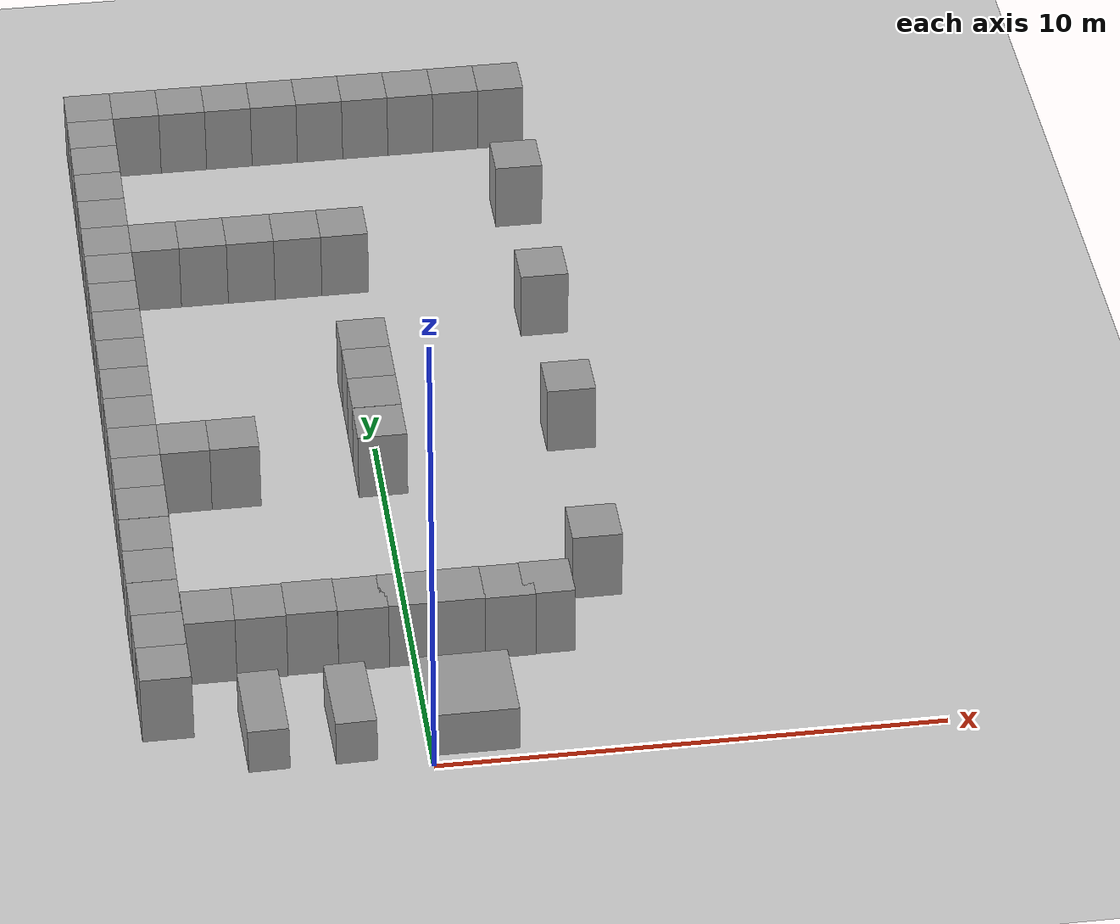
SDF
<sdf version="1.4">
 <world name="default">
  <model name="ground_plane">
   <static>1</static>
   <link name="link">
    <collision name="collision">
     <geometry><plane><normal>0 0 1</normal><size>100 100</size></plane></geometry>
     <surface><friction><ode><mu>100</mu><mu2>50</mu2></ode></friction></surface>
    </collision>
    <visual name="visual">
     <cast_shadows>0</cast_shadows>
     <geometry><plane><normal>0 0 1</normal><size>100 100</size></plane></geometry>
     <material>
      <script><uri>file://media/materials/scripts/gazebo.material</uri><name>Gazebo/Grey</name></script>
     </material>
    </visual>
    <velocity_decay><linear>0</linear><angular>0</angular></velocity_decay>
   </link>
  </model>
  <model name="unit_box_1">
   <pose>-5.01661 4.99523 0.5 0 -0 0.000223</pose>
   <static>1</static>
   <link name="link">
    <inertial>
     <mass>1</mass>
     <inertia><ixx>1</ixx><ixy>0</ixy><ixz>0</ixz><iyy>1</iyy><iyz>0</iyz><izz>1</izz></inertia>
    </inertial>
    <collision name="collision"><geometry><box><size>1 1 2</size></box></geometry></collision>
    <visual name="visual">
     <geometry><box><size>1 1 2</size></box></geometry>
     <material>
      <script><uri>file://media/materials/scripts/gazebo.material</uri><name>Gazebo/Grey</name></script>
     </material>
    </visual>
    <velocity_decay><linear>0</linear><angular>0</angular></velocity_decay>
   </link>
   <static>0</static>
  </model>
  <model name="unit_box_2">
   <pose>-4.00553 3.58042 0.5 0 -0 3e-05</pose>
   <static>1</static>
   <link name="link">
    <inertial>
     <mass>1</mass>
     <inertia><ixx>1</ixx><ixy>0</ixy><ixz>0</ixz><iyy>1</iyy><iyz>0</iyz><izz>1</izz></inertia>
    </inertial>
    <collision name="collision"><geometry><box><size>1 1 2</size></box></geometry></collision>
    <visual name="visual">
     <geometry><box><size>1 1 2</size></box></geometry>
     <material>
      <script><uri>file://media/materials/scripts/gazebo.material</uri><name>Gazebo/Grey</name></script>
     </material>
    </visual>
    <velocity_decay><linear>0</linear><angular>0</angular></velocity_decay>
   </link>
   <static>0</static>
  </model>
  <model name="unit_box_3">
   <pose>-3.01637 3.57596 0.5 0 -0 2.1e-05</pose>
   <static>1</static>
   <link name="link">
    <inertial>
     <mass>1</mass>
     <inertia><ixx>1</ixx><ixy>0</ixy><ixz>0</ixz><iyy>1</iyy><iyz>0</iyz><izz>1</izz></inertia>
    </inertial>
    <collision name="collision"><geometry><box><size>1 1 2</size></box></geometry></collision>
    <visual name="visual">
     <geometry><box><size>1 1 2</size></box></geometry>
     <material>
      <script><uri>file://media/materials/scripts/gazebo.material</uri><name>Gazebo/Grey</name></script>
     </material>
    </visual>
    <velocity_decay><linear>0</linear><angular>0</angular></velocity_decay>
   </link>
   <static>0</static>
  </model>
  <model name="unit_box_4">
   <pose>-2.01664 3.5974 0.5 0 0 -0.000278</pose>
   <static>1</static>
   <link name="link">
    <inertial>
     <mass>1</mass>
     <inertia><ixx>1</ixx><ixy>0</ixy><ixz>0</ixz><iyy>1</iyy><iyz>0</iyz><izz>1</izz></inertia>
    </inertial>
    <collision name="collision"><geometry><box><size>1 1 2</size></box></geometry></collision>
    <visual name="visual">
     <geometry><box><size>1 1 2</size></box></geometry>
     <material>
      <script><uri>file://media/materials/scripts/gazebo.material</uri><name>Gazebo/Grey</name></script>
     </material>
    </visual>
    <velocity_decay><linear>0</linear><angular>0</angular></velocity_decay>
   </link>
   <static>0</static>
  </model>
  <model name="unit_box_5">
   <pose>-1.01668 3.57335 0.5 0 0 -0.000319</pose>
   <static>1</static>
   <link name="link">
    <inertial>
     <mass>1</mass>
     <inertia><ixx>1</ixx><ixy>0</ixy><ixz>0</ixz><iyy>1</iyy><iyz>0</iyz><izz>1</izz></inertia>
    </inertial>
    <collision name="collision"><geometry><box><size>1 1 2</size></box></geometry></collision>
    <visual name="visual">
     <geometry><box><size>1 1 2</size></box></geometry>
     <material>
      <script><uri>file://media/materials/scripts/gazebo.material</uri><name>Gazebo/Grey</name></script>
     </material>
    </visual>
    <velocity_decay><linear>0</linear><angular>0</angular></velocity_decay>
   </link>
   <static>0</static>
  </model>
  <model name="unit_box_6">
   <pose>-0.151354 3.58421 0.5 0 0 -0.000328</pose>
   <static>1</static>
   <link name="link">
    <inertial>
     <mass>1</mass>
     <inertia><ixx>1</ixx><ixy>0</ixy><ixz>0</ixz><iyy>1</iyy><iyz>0</iyz><izz>1</izz></inertia>
    </inertial>
    <collision name="collision"><geometry><box><size>1 1 2</size></box></geometry></collision>
    <visual name="visual">
     <geometry><box><size>1 1 2</size></box></geometry>
     <material>
      <script><uri>file://media/materials/scripts/gazebo.material</uri><name>Gazebo/Grey</name></script>
     </material>
    </visual>
    <velocity_decay><linear>0</linear><angular>0</angular></velocity_decay>
   </link>
   <static>0</static>
  </model>
  <model name="unit_box_7">
   <pose>0.893326 3.59049 0.5 0 0 -0.000753</pose>
   <static>1</static>
   <link name="link">
    <inertial>
     <mass>1</mass>
     <inertia><ixx>1</ixx><ixy>0</ixy><ixz>0</ixz><iyy>1</iyy><iyz>0</iyz><izz>1</izz></inertia>
    </inertial>
    <collision name="collision"><geometry><box><size>1 1 2</size></box></geometry></collision>
    <visual name="visual">
     <geometry><box><size>1 1 2</size></box></geometry>
     <material>
      <script><uri>file://media/materials/scripts/gazebo.material</uri><name>Gazebo/Grey</name></script>
     </material>
    </visual>
    <velocity_decay><linear>0</linear><angular>0</angular></velocity_decay>
   </link>
   <static>0</static>
  </model>
  <model name="unit_box_8">
   <pose>1.87753 3.57629 0.5 0 0 -0.000671</pose>
   <static>1</static>
   <link name="link">
    <inertial>
     <mass>1</mass>
     <inertia><ixx>1</ixx><ixy>0</ixy><ixz>0</ixz><iyy>1</iyy><iyz>0</iyz><izz>1</izz></inertia>
    </inertial>
    <collision name="collision"><geometry><box><size>1 1 2</size></box></geometry></collision>
    <visual name="visual">
     <geometry><box><size>1 1 2</size></box></geometry>
     <material>
      <script><uri>file://media/materials/scripts/gazebo.material</uri><name>Gazebo/Grey</name></script>
     </material>
    </visual>
    <velocity_decay><linear>0</linear><angular>0</angular></velocity_decay>
   </link>
   <static>0</static>
  </model>
  <model name="unit_box_40">
   <pose>-5.01481 3.99235 0.5 0 -0 0.003225</pose>
   <static>1</static>
   <link name="link">
    <inertial>
     <mass>1</mass>
     <inertia><ixx>1</ixx><ixy>0</ixy><ixz>0</ixz><iyy>1</iyy><iyz>0</iyz><izz>1</izz></inertia>
    </inertial>
    <collision name="collision"><geometry><box><size>1 1 2</size></box></geometry></collision>
    <visual name="visual">
     <geometry><box><size>1 1 2</size></box></geometry>
     <material>
      <script><uri>file://media/materials/scripts/gazebo.material</uri><name>Gazebo/Grey</name></script>
     </material>
    </visual>
    <velocity_decay><linear>0</linear><angular>0</angular></velocity_decay>
   </link>
   <static>0</static>
  </model>
  <model name="unit_box_41">
   <pose>-5.00826 2.99203 0.5 0 -0 0.002598</pose>
   <static>1</static>
   <link name="link">
    <inertial>
     <mass>1</mass>
     <inertia><ixx>1</ixx><ixy>0</ixy><ixz>0</ixz><iyy>1</iyy><iyz>0</iyz><izz>1</izz></inertia>
    </inertial>
    <collision name="collision"><geometry><box><size>1 1 2</size></box></geometry></collision>
    <visual name="visual">
     <geometry><box><size>1 1 2</size></box></geometry>
     <material>
      <script><uri>file://media/materials/scripts/gazebo.material</uri><name>Gazebo/Grey</name></script>
     </material>
    </visual>
    <velocity_decay><linear>0</linear><angular>0</angular></velocity_decay>
   </link>
   <static>0</static>
  </model>
  <model name="unit_box_42">
   <pose>-5.0021 1.99164 0.5 0 -0 0.001796</pose>
   <static>1</static>
   <link name="link">
    <inertial>
     <mass>1</mass>
     <inertia><ixx>1</ixx><ixy>0</ixy><ixz>0</ixz><iyy>1</iyy><iyz>0</iyz><izz>1</izz></inertia>
    </inertial>
    <collision name="collision"><geometry><box><size>1 1 2</size></box></geometry></collision>
    <visual name="visual">
     <geometry><box><size>1 1 2</size></box></geometry>
     <material>
      <script><uri>file://media/materials/scripts/gazebo.material</uri><name>Gazebo/Grey</name></script>
     </material>
    </visual>
    <velocity_decay><linear>0</linear><angular>0</angular></velocity_decay>
   </link>
   <static>0</static>
  </model>
  <model name="unit_box_53">
   <pose>3.82945 5.19983 0.5 0 0 -3e-06</pose>
   <static>1</static>
   <link name="link">
    <inertial>
     <mass>1</mass>
     <inertia><ixx>1</ixx><ixy>0</ixy><ixz>0</ixz><iyy>1</iyy><iyz>0</iyz><izz>1</izz></inertia>
    </inertial>
    <collision name="collision"><geometry><box><size>1 1 2</size></box></geometry></collision>
    <visual name="visual">
     <geometry><box><size>1 1 2</size></box></geometry>
     <material>
      <script><uri>file://media/materials/scripts/gazebo.material</uri><name>Gazebo/Grey</name></script>
     </material>
    </visual>
    <velocity_decay><linear>0</linear><angular>0</angular></velocity_decay>
   </link>
   <static>0</static>
  </model>
  <model name="unit_box_59">
   <pose>2.6575 3.59379 0.5 0 0 -0.000262</pose>
   <static>1</static>
   <link name="link">
    <inertial>
     <mass>1</mass>
     <inertia><ixx>1</ixx><ixy>0</ixy><ixz>0</ixz><iyy>1</iyy><iyz>0</iyz><izz>1</izz></inertia>
    </inertial>
    <collision name="collision"><geometry><box><size>0.705746 1 2</size></box></geometry></collision>
    <visual name="visual">
     <geometry><box><size>1 1 2</size></box></geometry>
     <material>
      <script><uri>file://media/materials/scripts/gazebo.material</uri><name>Gazebo/Grey</name></script>
     </material>
    </visual>
    <velocity_decay><linear>0</linear><angular>0</angular></velocity_decay>
   </link>
   <static>0</static>
  </model>
  <model name="unit_box_60">
   <pose>-0.004062 8.99709 0.5 0 0 -8.2e-05</pose>
   <static>1</static>
   <link name="link">
    <inertial>
     <mass>1</mass>
     <inertia><ixx>1</ixx><ixy>0</ixy><ixz>0</ixz><iyy>1</iyy><iyz>0</iyz><izz>1</izz></inertia>
    </inertial>
    <collision name="collision"><geometry><box><size>1 1 2</size></box></geometry></collision>
    <visual name="visual">
     <geometry><box><size>1 1 2</size></box></geometry>
     <material>
      <script><uri>file://media/materials/scripts/gazebo.material</uri><name>Gazebo/Grey</name></script>
     </material>
    </visual>
    <velocity_decay><linear>0</linear><angular>0</angular></velocity_decay>
   </link>
   <static>0</static>
  </model>
  <model name="unit_box_61">
   <pose>-5.0071 5.99581 0.5 0 0 -0.000452</pose>
   <static>1</static>
   <link name="link">
    <inertial>
     <mass>1</mass>
     <inertia><ixx>1</ixx><ixy>0</ixy><ixz>0</ixz><iyy>1</iyy><iyz>0</iyz><izz>1</izz></inertia>
    </inertial>
    <collision name="collision"><geometry><box><size>1 1 2</size></box></geometry></collision>
    <visual name="visual">
     <geometry><box><size>1 1 2</size></box></geometry>
     <material>
      <script><uri>file://media/materials/scripts/gazebo.material</uri><name>Gazebo/Grey</name></script>
     </material>
    </visual>
    <velocity_decay><linear>0</linear><angular>0</angular></velocity_decay>
   </link>
   <static>0</static>
  </model>
  <model name="unit_box_62">
   <pose>0 10 0.5 0 -0 0</pose>
   <static>1</static>
   <link name="link">
    <inertial>
     <mass>1</mass>
     <inertia><ixx>1</ixx><ixy>0</ixy><ixz>0</ixz><iyy>1</iyy><iyz>0</iyz><izz>1</izz></inertia>
    </inertial>
    <collision name="collision"><geometry><box><size>1 1 2</size></box></geometry></collision>
    <visual name="visual">
     <geometry><box><size>1 1 2</size></box></geometry>
     <material>
      <script><uri>file://media/materials/scripts/gazebo.material</uri><name>Gazebo/Grey</name></script>
     </material>
    </visual>
    <velocity_decay><linear>0</linear><angular>0</angular></velocity_decay>
   </link>
   <static>0</static>
  </model>
  <model name="unit_box_63">
   <pose>0 11 0.5 0 -0 0</pose>
   <static>1</static>
   <link name="link">
    <inertial>
     <mass>1</mass>
     <inertia><ixx>1</ixx><ixy>0</ixy><ixz>0</ixz><iyy>1</iyy><iyz>0</iyz><izz>1</izz></inertia>
    </inertial>
    <collision name="collision"><geometry><box><size>1 1 2</size></box></geometry></collision>
    <visual name="visual">
     <geometry><box><size>1 1 2</size></box></geometry>
     <material>
      <script><uri>file://media/materials/scripts/gazebo.material</uri><name>Gazebo/Grey</name></script>
     </material>
    </visual>
    <velocity_decay><linear>0</linear><angular>0</angular></velocity_decay>
   </link>
   <static>0</static>
  </model>
  <model name="unit_box_64">
   <pose>0 12 0.5 0 -0 0</pose>
   <static>1</static>
   <link name="link">
    <inertial>
     <mass>1</mass>
     <inertia><ixx>1</ixx><ixy>0</ixy><ixz>0</ixz><iyy>1</iyy><iyz>0</iyz><izz>1</izz></inertia>
    </inertial>
    <collision name="collision"><geometry><box><size>1 1 2</size></box></geometry></collision>
    <visual name="visual">
     <geometry><box><size>1 1 2</size></box></geometry>
     <material>
      <script><uri>file://media/materials/scripts/gazebo.material</uri><name>Gazebo/Grey</name></script>
     </material>
    </visual>
    <velocity_decay><linear>0</linear><angular>0</angular></velocity_decay>
   </link>
   <static>0</static>
  </model>
  <model name="unit_box_65">
   <pose>4 14 0.5 0 -0 0</pose>
   <static>1</static>
   <link name="link">
    <inertial>
     <mass>1</mass>
     <inertia><ixx>1</ixx><ixy>0</ixy><ixz>0</ixz><iyy>1</iyy><iyz>0</iyz><izz>1</izz></inertia>
    </inertial>
    <collision name="collision"><geometry><box><size>1 1 2</size></box></geometry></collision>
    <visual name="visual">
     <geometry><box><size>1 1 2</size></box></geometry>
     <material>
      <script><uri>file://media/materials/scripts/gazebo.material</uri><name>Gazebo/Grey</name></script>
     </material>
    </visual>
    <velocity_decay><linear>0</linear><angular>0</angular></velocity_decay>
   </link>
   <static>0</static>
  </model>
  <model name="unit_box_67">
   <pose>-5.00001 6.99999 0.5 0 -0 9e-06</pose>
   <static>1</static>
   <link name="link">
    <inertial>
     <mass>1</mass>
     <inertia><ixx>1</ixx><ixy>0</ixy><ixz>0</ixz><iyy>1</iyy><iyz>0</iyz><izz>1</izz></inertia>
    </inertial>
    <collision name="collision"><geometry><box><size>1 1 2</size></box></geometry></collision>
    <visual name="visual">
     <geometry><box><size>1 1 2</size></box></geometry>
     <material>
      <script><uri>file://media/materials/scripts/gazebo.material</uri><name>Gazebo/Grey</name></script>
     </material>
    </visual>
    <velocity_decay><linear>0</linear><angular>0</angular></velocity_decay>
   </link>
   <static>0</static>
  </model>
  <model name="unit_box_68">
   <pose>-5.00001 7.99999 0.5 0 -0 8e-06</pose>
   <static>1</static>
   <link name="link">
    <inertial>
     <mass>1</mass>
     <inertia><ixx>1</ixx><ixy>0</ixy><ixz>0</ixz><iyy>1</iyy><iyz>0</iyz><izz>1</izz></inertia>
    </inertial>
    <collision name="collision"><geometry><box><size>1 1 2</size></box></geometry></collision>
    <visual name="visual">
     <geometry><box><size>1 1 2</size></box></geometry>
     <material>
      <script><uri>file://media/materials/scripts/gazebo.material</uri><name>Gazebo/Grey</name></script>
     </material>
    </visual>
    <velocity_decay><linear>0</linear><angular>0</angular></velocity_decay>
   </link>
   <static>0</static>
  </model>
  <model name="unit_box_69">
   <pose>-5 8.99999 0.5 0 -0 7e-06</pose>
   <static>1</static>
   <link name="link">
    <inertial>
     <mass>1</mass>
     <inertia><ixx>1</ixx><ixy>0</ixy><ixz>0</ixz><iyy>1</iyy><iyz>0</iyz><izz>1</izz></inertia>
    </inertial>
    <collision name="collision"><geometry><box><size>1 1 2</size></box></geometry></collision>
    <visual name="visual">
     <geometry><box><size>1 1 2</size></box></geometry>
     <material>
      <script><uri>file://media/materials/scripts/gazebo.material</uri><name>Gazebo/Grey</name></script>
     </material>
    </visual>
    <velocity_decay><linear>0</linear><angular>0</angular></velocity_decay>
   </link>
   <static>0</static>
  </model>
  <model name="unit_box_70">
   <pose>-4 9 0.5 0 -0 7e-06</pose>
   <static>1</static>
   <link name="link">
    <inertial>
     <mass>1</mass>
     <inertia><ixx>1</ixx><ixy>0</ixy><ixz>0</ixz><iyy>1</iyy><iyz>0</iyz><izz>1</izz></inertia>
    </inertial>
    <collision name="collision"><geometry><box><size>1 1 2</size></box></geometry></collision>
    <visual name="visual">
     <geometry><box><size>1 1 2</size></box></geometry>
     <material>
      <script><uri>file://media/materials/scripts/gazebo.material</uri><name>Gazebo/Grey</name></script>
     </material>
    </visual>
    <velocity_decay><linear>0</linear><angular>0</angular></velocity_decay>
   </link>
   <static>0</static>
  </model>
  <model name="unit_box_71">
   <pose>-2.99999 9 0.5 0 -0 2e-06</pose>
   <static>1</static>
   <link name="link">
    <inertial>
     <mass>1</mass>
     <inertia><ixx>1</ixx><ixy>0</ixy><ixz>0</ixz><iyy>1</iyy><iyz>0</iyz><izz>1</izz></inertia>
    </inertial>
    <collision name="collision"><geometry><box><size>1 1 2</size></box></geometry></collision>
    <visual name="visual">
     <geometry><box><size>1 1 2</size></box></geometry>
     <material>
      <script><uri>file://media/materials/scripts/gazebo.material</uri><name>Gazebo/Grey</name></script>
     </material>
    </visual>
    <velocity_decay><linear>0</linear><angular>0</angular></velocity_decay>
   </link>
   <static>0</static>
  </model>
  <model name="unit_box_72">
   <pose>-4.99999 9.99999 0.5 0 -0 7e-06</pose>
   <static>1</static>
   <link name="link">
    <inertial>
     <mass>1</mass>
     <inertia><ixx>1</ixx><ixy>0</ixy><ixz>0</ixz><iyy>1</iyy><iyz>0</iyz><izz>1</izz></inertia>
    </inertial>
    <collision name="collision"><geometry><box><size>1 1 2</size></box></geometry></collision>
    <visual name="visual">
     <geometry><box><size>1 1 2</size></box></geometry>
     <material>
      <script><uri>file://media/materials/scripts/gazebo.material</uri><name>Gazebo/Grey</name></script>
     </material>
    </visual>
    <velocity_decay><linear>0</linear><angular>0</angular></velocity_decay>
   </link>
   <static>0</static>
  </model>
  <model name="unit_box_73">
   <pose>-5.00001 11 0.5 0 -0 8e-06</pose>
   <static>1</static>
   <link name="link">
    <inertial>
     <mass>1</mass>
     <inertia><ixx>1</ixx><ixy>0</ixy><ixz>0</ixz><iyy>1</iyy><iyz>0</iyz><izz>1</izz></inertia>
    </inertial>
    <collision name="collision"><geometry><box><size>1 1 2</size></box></geometry></collision>
    <visual name="visual">
     <geometry><box><size>1 1 2</size></box></geometry>
     <material>
      <script><uri>file://media/materials/scripts/gazebo.material</uri><name>Gazebo/Grey</name></script>
     </material>
    </visual>
    <velocity_decay><linear>0</linear><angular>0</angular></velocity_decay>
   </link>
   <static>0</static>
  </model>
  <model name="unit_box_74">
   <pose>-5.00001 12 0.5 0 -0 8e-06</pose>
   <static>1</static>
   <link name="link">
    <inertial>
     <mass>1</mass>
     <inertia><ixx>1</ixx><ixy>0</ixy><ixz>0</ixz><iyy>1</iyy><iyz>0</iyz><izz>1</izz></inertia>
    </inertial>
    <collision name="collision"><geometry><box><size>1 1 2</size></box></geometry></collision>
    <visual name="visual">
     <geometry><box><size>1 1 2</size></box></geometry>
     <material>
      <script><uri>file://media/materials/scripts/gazebo.material</uri><name>Gazebo/Grey</name></script>
     </material>
    </visual>
    <velocity_decay><linear>0</linear><angular>0</angular></velocity_decay>
   </link>
   <static>0</static>
  </model>
  <model name="unit_box_75">
   <pose>-5 13 0.5 0 -0 5e-06</pose>
   <static>1</static>
   <link name="link">
    <inertial>
     <mass>1</mass>
     <inertia><ixx>1</ixx><ixy>0</ixy><ixz>0</ixz><iyy>1</iyy><iyz>0</iyz><izz>1</izz></inertia>
    </inertial>
    <collision name="collision"><geometry><box><size>1 1 2</size></box></geometry></collision>
    <visual name="visual">
     <geometry><box><size>1 1 2</size></box></geometry>
     <material>
      <script><uri>file://media/materials/scripts/gazebo.material</uri><name>Gazebo/Grey</name></script>
     </material>
    </visual>
    <velocity_decay><linear>0</linear><angular>0</angular></velocity_decay>
   </link>
   <static>0</static>
  </model>
  <model name="unit_box_76">
   <pose>-5 14 0.5 0 -0 6e-06</pose>
   <static>1</static>
   <link name="link">
    <inertial>
     <mass>1</mass>
     <inertia><ixx>1</ixx><ixy>0</ixy><ixz>0</ixz><iyy>1</iyy><iyz>0</iyz><izz>1</izz></inertia>
    </inertial>
    <collision name="collision"><geometry><box><size>1 1 2</size></box></geometry></collision>
    <visual name="visual">
     <geometry><box><size>1 1 2</size></box></geometry>
     <material>
      <script><uri>file://media/materials/scripts/gazebo.material</uri><name>Gazebo/Grey</name></script>
     </material>
    </visual>
    <velocity_decay><linear>0</linear><angular>0</angular></velocity_decay>
   </link>
   <static>0</static>
  </model>
  <model name="unit_box_77">
   <pose>-4.99999 15 0.5 0 -0 7e-06</pose>
   <static>1</static>
   <link name="link">
    <inertial>
     <mass>1</mass>
     <inertia><ixx>1</ixx><ixy>0</ixy><ixz>0</ixz><iyy>1</iyy><iyz>0</iyz><izz>1</izz></inertia>
    </inertial>
    <collision name="collision"><geometry><box><size>1 1 2</size></box></geometry></collision>
    <visual name="visual">
     <geometry><box><size>1 1 2</size></box></geometry>
     <material>
      <script><uri>file://media/materials/scripts/gazebo.material</uri><name>Gazebo/Grey</name></script>
     </material>
    </visual>
    <velocity_decay><linear>0</linear><angular>0</angular></velocity_decay>
   </link>
   <static>0</static>
  </model>
  <model name="unit_box_78">
   <pose>-5 16 0.5 0 -0 7e-06</pose>
   <static>1</static>
   <link name="link">
    <inertial>
     <mass>1</mass>
     <inertia><ixx>1</ixx><ixy>0</ixy><ixz>0</ixz><iyy>1</iyy><iyz>0</iyz><izz>1</izz></inertia>
    </inertial>
    <collision name="collision"><geometry><box><size>1 1 2</size></box></geometry></collision>
    <visual name="visual">
     <geometry><box><size>1 1 2</size></box></geometry>
     <material>
      <script><uri>file://media/materials/scripts/gazebo.material</uri><name>Gazebo/Grey</name></script>
     </material>
    </visual>
    <velocity_decay><linear>0</linear><angular>0</angular></velocity_decay>
   </link>
   <static>0</static>
  </model>
  <model name="unit_box_79">
   <pose>-4.99997 17 0.5 0 -0 6e-06</pose>
   <static>1</static>
   <link name="link">
    <inertial>
     <mass>1</mass>
     <inertia><ixx>1</ixx><ixy>0</ixy><ixz>0</ixz><iyy>1</iyy><iyz>0</iyz><izz>1</izz></inertia>
    </inertial>
    <collision name="collision"><geometry><box><size>1 1 2</size></box></geometry></collision>
    <visual name="visual">
     <geometry><box><size>1 1 2</size></box></geometry>
     <material>
      <script><uri>file://media/materials/scripts/gazebo.material</uri><name>Gazebo/Grey</name></script>
     </material>
    </visual>
    <velocity_decay><linear>0</linear><angular>0</angular></velocity_decay>
   </link>
   <static>0</static>
  </model>
  <model name="unit_box_80">
   <pose>-4.99997 18 0.5 0 -0 3e-06</pose>
   <static>1</static>
   <link name="link">
    <inertial>
     <mass>1</mass>
     <inertia><ixx>1</ixx><ixy>0</ixy><ixz>0</ixz><iyy>1</iyy><iyz>0</iyz><izz>1</izz></inertia>
    </inertial>
    <collision name="collision"><geometry><box><size>1 1 2</size></box></geometry></collision>
    <visual name="visual">
     <geometry><box><size>1 1 2</size></box></geometry>
     <material>
      <script><uri>file://media/materials/scripts/gazebo.material</uri><name>Gazebo/Grey</name></script>
     </material>
    </visual>
    <velocity_decay><linear>0</linear><angular>0</angular></velocity_decay>
   </link>
   <static>0</static>
  </model>
  <model name="unit_box_81">
   <pose>-4 16 0.5 0 -0 7e-06</pose>
   <static>1</static>
   <link name="link">
    <inertial>
     <mass>1</mass>
     <inertia><ixx>1</ixx><ixy>0</ixy><ixz>0</ixz><iyy>1</iyy><iyz>0</iyz><izz>1</izz></inertia>
    </inertial>
    <collision name="collision"><geometry><box><size>1 1 2</size></box></geometry></collision>
    <visual name="visual">
     <geometry><box><size>1 1 2</size></box></geometry>
     <material>
      <script><uri>file://media/materials/scripts/gazebo.material</uri><name>Gazebo/Grey</name></script>
     </material>
    </visual>
    <velocity_decay><linear>0</linear><angular>0</angular></velocity_decay>
   </link>
   <static>0</static>
  </model>
  <model name="unit_box_82">
   <pose>-2.99999 16 0.5 0 -0 1.1e-05</pose>
   <static>1</static>
   <link name="link">
    <inertial>
     <mass>1</mass>
     <inertia><ixx>1</ixx><ixy>0</ixy><ixz>0</ixz><iyy>1</iyy><iyz>0</iyz><izz>1</izz></inertia>
    </inertial>
    <collision name="collision"><geometry><box><size>1 1 2</size></box></geometry></collision>
    <visual name="visual">
     <geometry><box><size>1 1 2</size></box></geometry>
     <material>
      <script><uri>file://media/materials/scripts/gazebo.material</uri><name>Gazebo/Grey</name></script>
     </material>
    </visual>
    <velocity_decay><linear>0</linear><angular>0</angular></velocity_decay>
   </link>
   <static>0</static>
  </model>
  <model name="unit_box_83">
   <pose>-1.99999 16 0.5 0 -0 1.1e-05</pose>
   <static>1</static>
   <link name="link">
    <inertial>
     <mass>1</mass>
     <inertia><ixx>1</ixx><ixy>0</ixy><ixz>0</ixz><iyy>1</iyy><iyz>0</iyz><izz>1</izz></inertia>
    </inertial>
    <collision name="collision"><geometry><box><size>1 1 2</size></box></geometry></collision>
    <visual name="visual">
     <geometry><box><size>1 1 2</size></box></geometry>
     <material>
      <script><uri>file://media/materials/scripts/gazebo.material</uri><name>Gazebo/Grey</name></script>
     </material>
    </visual>
    <velocity_decay><linear>0</linear><angular>0</angular></velocity_decay>
   </link>
   <static>0</static>
  </model>
  <model name="unit_box_84">
   <pose>-0.999991 16 0.5 0 -0 1.1e-05</pose>
   <static>1</static>
   <link name="link">
    <inertial>
     <mass>1</mass>
     <inertia><ixx>1</ixx><ixy>0</ixy><ixz>0</ixz><iyy>1</iyy><iyz>0</iyz><izz>1</izz></inertia>
    </inertial>
    <collision name="collision"><geometry><box><size>1 1 2</size></box></geometry></collision>
    <visual name="visual">
     <geometry><box><size>1 1 2</size></box></geometry>
     <material>
      <script><uri>file://media/materials/scripts/gazebo.material</uri><name>Gazebo/Grey</name></script>
     </material>
    </visual>
    <velocity_decay><linear>0</linear><angular>0</angular></velocity_decay>
   </link>
   <static>0</static>
  </model>
  <model name="unit_box_85">
   <pose>1.2e-05 16 0.5 0 -0 1e-05</pose>
   <static>1</static>
   <link name="link">
    <inertial>
     <mass>1</mass>
     <inertia><ixx>1</ixx><ixy>0</ixy><ixz>0</ixz><iyy>1</iyy><iyz>0</iyz><izz>1</izz></inertia>
    </inertial>
    <collision name="collision"><geometry><box><size>1 1 2</size></box></geometry></collision>
    <visual name="visual">
     <geometry><box><size>1 1 2</size></box></geometry>
     <material>
      <script><uri>file://media/materials/scripts/gazebo.material</uri><name>Gazebo/Grey</name></script>
     </material>
    </visual>
    <velocity_decay><linear>0</linear><angular>0</angular></velocity_decay>
   </link>
   <static>0</static>
  </model>
  <model name="unit_box_92">
   <pose>4 10 0.5 0 -0 1e-06</pose>
   <static>1</static>
   <link name="link">
    <inertial>
     <mass>1</mass>
     <inertia><ixx>1</ixx><ixy>0</ixy><ixz>0</ixz><iyy>1</iyy><iyz>0</iyz><izz>1</izz></inertia>
    </inertial>
    <collision name="collision"><geometry><box><size>1 1 2</size></box></geometry></collision>
    <visual name="visual">
     <geometry><box><size>1 1 2</size></box></geometry>
     <material>
      <script><uri>file://media/materials/scripts/gazebo.material</uri><name>Gazebo/Grey</name></script>
     </material>
    </visual>
    <velocity_decay><linear>0</linear><angular>0</angular></velocity_decay>
   </link>
   <static>0</static>
  </model>
  <model name="unit_box_96">
   <pose>-4.99997 19 0.5 0 -0 1e-06</pose>
   <static>1</static>
   <link name="link">
    <inertial>
     <mass>1</mass>
     <inertia><ixx>1</ixx><ixy>0</ixy><ixz>0</ixz><iyy>1</iyy><iyz>0</iyz><izz>1</izz></inertia>
    </inertial>
    <collision name="collision"><geometry><box><size>1 1 2</size></box></geometry></collision>
    <visual name="visual">
     <geometry><box><size>1 1 2</size></box></geometry>
     <material>
      <script><uri>file://media/materials/scripts/gazebo.material</uri><name>Gazebo/Grey</name></script>
     </material>
    </visual>
    <velocity_decay><linear>0</linear><angular>0</angular></velocity_decay>
   </link>
   <static>0</static>
  </model>
  <model name="unit_box_97">
   <pose>-4.99997 20 0.5 0 -0 1e-06</pose>
   <static>1</static>
   <link name="link">
    <inertial>
     <mass>1</mass>
     <inertia><ixx>1</ixx><ixy>0</ixy><ixz>0</ixz><iyy>1</iyy><iyz>0</iyz><izz>1</izz></inertia>
    </inertial>
    <collision name="collision"><geometry><box><size>1 1 2</size></box></geometry></collision>
    <visual name="visual">
     <geometry><box><size>1 1 2</size></box></geometry>
     <material>
      <script><uri>file://media/materials/scripts/gazebo.material</uri><name>Gazebo/Grey</name></script>
     </material>
    </visual>
    <velocity_decay><linear>0</linear><angular>0</angular></velocity_decay>
   </link>
   <static>0</static>
  </model>
  <model name="unit_box_98">
   <pose>-5.00001 21 0.5 0 -0 0</pose>
   <static>1</static>
   <link name="link">
    <inertial>
     <mass>1</mass>
     <inertia><ixx>1</ixx><ixy>0</ixy><ixz>0</ixz><iyy>1</iyy><iyz>0</iyz><izz>1</izz></inertia>
    </inertial>
    <collision name="collision"><geometry><box><size>1 1 2</size></box></geometry></collision>
    <visual name="visual">
     <geometry><box><size>1 1 2</size></box></geometry>
     <material>
      <script><uri>file://media/materials/scripts/gazebo.material</uri><name>Gazebo/Grey</name></script>
     </material>
    </visual>
    <velocity_decay><linear>0</linear><angular>0</angular></velocity_decay>
   </link>
   <static>0</static>
  </model>
  <model name="unit_box_99">
   <pose>-4.00001 21 0.5 0 0 -1e-06</pose>
   <static>1</static>
   <link name="link">
    <inertial>
     <mass>1</mass>
     <inertia><ixx>1</ixx><ixy>0</ixy><ixz>0</ixz><iyy>1</iyy><iyz>0</iyz><izz>1</izz></inertia>
    </inertial>
    <collision name="collision"><geometry><box><size>1 1 2</size></box></geometry></collision>
    <visual name="visual">
     <geometry><box><size>1 1 2</size></box></geometry>
     <material>
      <script><uri>file://media/materials/scripts/gazebo.material</uri><name>Gazebo/Grey</name></script>
     </material>
    </visual>
    <velocity_decay><linear>0</linear><angular>0</angular></velocity_decay>
   </link>
   <static>0</static>
  </model>
  <model name="unit_box_100">
   <pose>-3.00001 21 0.5 0 0 -1e-06</pose>
   <static>1</static>
   <link name="link">
    <inertial>
     <mass>1</mass>
     <inertia><ixx>1</ixx><ixy>0</ixy><ixz>0</ixz><iyy>1</iyy><iyz>0</iyz><izz>1</izz></inertia>
    </inertial>
    <collision name="collision"><geometry><box><size>1 1 2</size></box></geometry></collision>
    <visual name="visual">
     <geometry><box><size>1 1 2</size></box></geometry>
     <material>
      <script><uri>file://media/materials/scripts/gazebo.material</uri><name>Gazebo/Grey</name></script>
     </material>
    </visual>
    <velocity_decay><linear>0</linear><angular>0</angular></velocity_decay>
   </link>
   <static>0</static>
  </model>
  <model name="unit_box_101">
   <pose>-2.00001 21 0.5 0 0 -1e-06</pose>
   <static>1</static>
   <link name="link">
    <inertial>
     <mass>1</mass>
     <inertia><ixx>1</ixx><ixy>0</ixy><ixz>0</ixz><iyy>1</iyy><iyz>0</iyz><izz>1</izz></inertia>
    </inertial>
    <collision name="collision"><geometry><box><size>1 1 2</size></box></geometry></collision>
    <visual name="visual">
     <geometry><box><size>1 1 2</size></box></geometry>
     <material>
      <script><uri>file://media/materials/scripts/gazebo.material</uri><name>Gazebo/Grey</name></script>
     </material>
    </visual>
    <velocity_decay><linear>0</linear><angular>0</angular></velocity_decay>
   </link>
   <static>0</static>
  </model>
  <model name="unit_box_102">
   <pose>-1.00001 21 0.5 0 -0 0</pose>
   <static>1</static>
   <link name="link">
    <inertial>
     <mass>1</mass>
     <inertia><ixx>1</ixx><ixy>0</ixy><ixz>0</ixz><iyy>1</iyy><iyz>0</iyz><izz>1</izz></inertia>
    </inertial>
    <collision name="collision"><geometry><box><size>1 1 2</size></box></geometry></collision>
    <visual name="visual">
     <geometry><box><size>1 1 2</size></box></geometry>
     <material>
      <script><uri>file://media/materials/scripts/gazebo.material</uri><name>Gazebo/Grey</name></script>
     </material>
    </visual>
    <velocity_decay><linear>0</linear><angular>0</angular></velocity_decay>
   </link>
   <static>0</static>
  </model>
  <model name="unit_box_103">
   <pose>-1e-05 21 0.5 0 -0 0</pose>
   <static>1</static>
   <link name="link">
    <inertial>
     <mass>1</mass>
     <inertia><ixx>1</ixx><ixy>0</ixy><ixz>0</ixz><iyy>1</iyy><iyz>0</iyz><izz>1</izz></inertia>
    </inertial>
    <collision name="collision"><geometry><box><size>1 1 2</size></box></geometry></collision>
    <visual name="visual">
     <geometry><box><size>1 1 2</size></box></geometry>
     <material>
      <script><uri>file://media/materials/scripts/gazebo.material</uri><name>Gazebo/Grey</name></script>
     </material>
    </visual>
    <velocity_decay><linear>0</linear><angular>0</angular></velocity_decay>
   </link>
   <static>0</static>
  </model>
  <model name="unit_box_104">
   <pose>0.999991 21 0.5 0 -0 0</pose>
   <static>1</static>
   <link name="link">
    <inertial>
     <mass>1</mass>
     <inertia><ixx>1</ixx><ixy>0</ixy><ixz>0</ixz><iyy>1</iyy><iyz>0</iyz><izz>1</izz></inertia>
    </inertial>
    <collision name="collision"><geometry><box><size>1 1 2</size></box></geometry></collision>
    <visual name="visual">
     <geometry><box><size>1 1 2</size></box></geometry>
     <material>
      <script><uri>file://media/materials/scripts/gazebo.material</uri><name>Gazebo/Grey</name></script>
     </material>
    </visual>
    <velocity_decay><linear>0</linear><angular>0</angular></velocity_decay>
   </link>
   <static>0</static>
  </model>
  <model name="unit_box_105">
   <pose>1.99999 21 0.5 0 -0 0</pose>
   <static>1</static>
   <link name="link">
    <inertial>
     <mass>1</mass>
     <inertia><ixx>1</ixx><ixy>0</ixy><ixz>0</ixz><iyy>1</iyy><iyz>0</iyz><izz>1</izz></inertia>
    </inertial>
    <collision name="collision"><geometry><box><size>1 1 2</size></box></geometry></collision>
    <visual name="visual">
     <geometry><box><size>1 1 2</size></box></geometry>
     <material>
      <script><uri>file://media/materials/scripts/gazebo.material</uri><name>Gazebo/Grey</name></script>
     </material>
    </visual>
    <velocity_decay><linear>0</linear><angular>0</angular></velocity_decay>
   </link>
   <static>0</static>
  </model>
  <model name="unit_box_106">
   <pose>2.99999 21 0.5 0 -0 1e-06</pose>
   <static>1</static>
   <link name="link">
    <inertial>
     <mass>1</mass>
     <inertia><ixx>1</ixx><ixy>0</ixy><ixz>0</ixz><iyy>1</iyy><iyz>0</iyz><izz>1</izz></inertia>
    </inertial>
    <collision name="collision"><geometry><box><size>1 1 2</size></box></geometry></collision>
    <visual name="visual">
     <geometry><box><size>1 1 2</size></box></geometry>
     <material>
      <script><uri>file://media/materials/scripts/gazebo.material</uri><name>Gazebo/Grey</name></script>
     </material>
    </visual>
    <velocity_decay><linear>0</linear><angular>0</angular></velocity_decay>
   </link>
   <static>0</static>
  </model>
  <model name="unit_box_107">
   <pose>3.99999 21 0.5 0 -0 2e-06</pose>
   <static>1</static>
   <link name="link">
    <inertial>
     <mass>1</mass>
     <inertia><ixx>1</ixx><ixy>0</ixy><ixz>0</ixz><iyy>1</iyy><iyz>0</iyz><izz>1</izz></inertia>
    </inertial>
    <collision name="collision"><geometry><box><size>1 1 2</size></box></geometry></collision>
    <visual name="visual">
     <geometry><box><size>1 1 2</size></box></geometry>
     <material>
      <script><uri>file://media/materials/scripts/gazebo.material</uri><name>Gazebo/Grey</name></script>
     </material>
    </visual>
    <velocity_decay><linear>0</linear><angular>0</angular></velocity_decay>
   </link>
   <static>0</static>
  </model>
  <model name="unit_box_128">
   <pose>4 18 0.5 0 -0 1e-06</pose>
   <static>1</static>
   <link name="link">
    <inertial>
     <mass>1</mass>
     <inertia><ixx>1</ixx><ixy>0</ixy><ixz>0</ixz><iyy>1</iyy><iyz>0</iyz><izz>1</izz></inertia>
    </inertial>
    <collision name="collision"><geometry><box><size>1 1 2</size></box></geometry></collision>
    <visual name="visual">
     <geometry><box><size>1 1 2</size></box></geometry>
     <material>
      <script><uri>file://media/materials/scripts/gazebo.material</uri><name>Gazebo/Grey</name></script>
     </material>
    </visual>
    <velocity_decay><linear>0</linear><angular>0</angular></velocity_decay>
   </link>
   <static>0</static>
  </model>
  <model name="unit_box_1_0">
   <pose>-3.1769 1.1936 0.5 0 0 -1.55288</pose>
   <link name="link">
    <inertial>
     <mass>50</mass>
     <inertia><ixx>1</ixx><ixy>0</ixy><ixz>0</ixz><iyy>1</iyy><iyz>0</iyz><izz>1</izz></inertia>
    </inertial>
    <collision name="collision"><geometry><box><size>1.78 0.8 1</size></box></geometry></collision>
    <visual name="visual">
     <geometry><box><size>1.78 0.8 1</size></box></geometry>
     <material>
      <script><uri>file://media/materials/scripts/gazebo.material</uri><name>Gazebo/Grey</name></script>
     </material>
    </visual>
    <velocity_decay><linear>0</linear><angular>0</angular></velocity_decay>
   </link>
   <static>0</static>
  </model>
  <model name="unit_box_2_0">
   <pose>-1.49175 1.20575 0.5 0 -0 1.59444</pose>
   <link name="link">
    <inertial>
     <mass>50</mass>
     <inertia><ixx>1</ixx><ixy>0</ixy><ixz>0</ixz><iyy>1</iyy><iyz>0</iyz><izz>1</izz></inertia>
    </inertial>
    <collision name="collision"><geometry><box><size>1.78 0.8 1</size></box></geometry></collision>
    <visual name="visual">
     <geometry><box><size>1.78 0.8 1</size></box></geometry>
     <material>
      <script><uri>file://media/materials/scripts/gazebo.material</uri><name>Gazebo/Grey</name></script>
     </material>
    </visual>
    <velocity_decay><linear>0</linear><angular>0</angular></velocity_decay>
   </link>
   <static>0</static>
  </model>
  <model name="unit_box_3_0">
   <pose>0.791517 1.19267 0.5 0 -0 0</pose>
   <link name="link">
    <inertial>
     <mass>50</mass>
     <inertia><ixx>1</ixx><ixy>0</ixy><ixz>0</ixz><iyy>1</iyy><iyz>0</iyz><izz>1</izz></inertia>
    </inertial>
    <collision name="collision"><geometry><box><size>1.98345 1.78 1</size></box></geometry></collision>
    <visual name="visual">
     <geometry><box><size>1.78 1.78 1</size></box></geometry>
     <material>
      <script><uri>file://media/materials/scripts/gazebo.material</uri><name>Gazebo/Grey</name></script>
     </material>
    </visual>
    <velocity_decay><linear>0</linear><angular>0</angular></velocity_decay>
   </link>
   <static>0</static>
  </model>
 </world>
</sdf>
